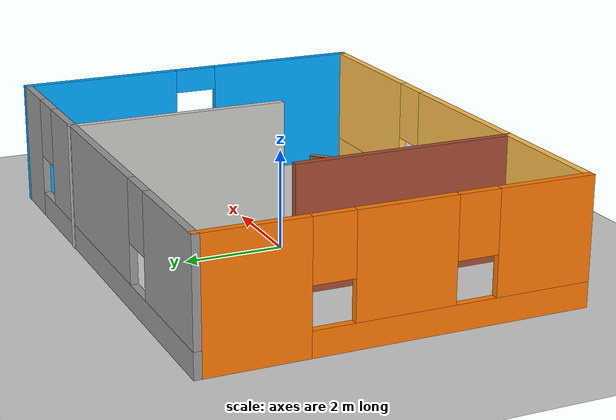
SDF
<sdf version="1.6">
 <world name="default">
  <light name="sun" type="directional">
   <pose>0 0 10 0 -0 0</pose>
   <diffuse>0.8 0.8 0.8 1</diffuse>
   <specular>0.2 0.2 0.2 1</specular>
   <attenuation>
    <range>1000</range>
    <constant>0.9</constant>
    <linear>0.01</linear>
    <quadratic>0.001</quadratic>
   </attenuation>
   <direction>-0.5 0.1 -0.9</direction>
  </light>
  <model name="ground_plane">
   <static>1</static>
   <link name="link">
    <collision name="collision">
     <geometry><plane><normal>0 0 1</normal><size>100 100</size></plane></geometry>
     <surface><friction><ode><mu>100</mu><mu2>50</mu2></ode></friction></surface>
    </collision>
    <visual name="visual">
     <cast_shadows>0</cast_shadows>
     <geometry><plane><normal>0 0 1</normal><size>100 100</size></plane></geometry>
     <material>
      <script><uri>file://media/materials/scripts/gazebo.material</uri><name>Gazebo/Grey</name></script>
     </material>
    </visual>
   </link>
  </model>
  <gravity>0 0 -9.8</gravity>
  <magnetic_field>6e-06 2.3e-05 -4.2e-05</magnetic_field>
  <atmosphere type="adiabatic"/>
  <physics name="default_physics" default="0" type="ode">
   <max_step_size>0.001</max_step_size>
   <real_time_factor>1</real_time_factor>
   <real_time_update_rate>1000</real_time_update_rate>
  </physics>
  <scene><ambient>0.4 0.4 0.4 1</ambient><background>0.7 0.7 0.7 1</background><shadows>1</shadows></scene>
  <spherical_coordinates>
   <surface_model>EARTH_WGS84</surface_model>
   <latitude_deg>0</latitude_deg>
   <longitude_deg>0</longitude_deg>
   <elevation>0</elevation>
   <heading_deg>0</heading_deg>
  </spherical_coordinates>
  <model name="building_002">
   <pose>-0.0081 -0.01454 0 0 -0 0</pose>
   <link name="Wall_10">
    <collision name="Wall_10_Collision">
     <geometry><box><size>4.5 0.15 2.5</size></box></geometry>
     <pose>0 0 1.25 0 -0 0</pose>
    </collision>
    <visual name="Wall_10_Visual">
     <pose>0 0 1.25 0 -0 0</pose>
     <geometry><box><size>4.5 0.15 2.5</size></box></geometry>
     <material>
      <script><uri>file://media/materials/scripts/gazebo.material</uri><name>Gazebo/CeilingTiled</name></script>
      <ambient>1 1 1 1</ambient>
     </material>
     <meta><layer>0</layer></meta>
    </visual>
    <pose>1.62687 1.50764 0 0 0 -1.5708</pose>
   </link>
   <link name="Wall_3">
    <pose>0 -3.68264 0 0 -0 0</pose>
    <visual name="Wall_3_Visual_0">
     <pose>-1.94691 0 1.25 0 -0 0</pose>
     <geometry><box><size>6.10619 0.15 2.5</size></box></geometry>
     <material>
      <script><uri>file://media/materials/scripts/gazebo.material</uri><name>Gazebo/Grey</name></script>
      <ambient>1 0.764706 0.305882 1</ambient>
     </material>
     <meta><layer>0</layer></meta>
    </visual>
    <collision name="Wall_3_Collision_0">
     <geometry><box><size>6.10619 0.15 2.5</size></box></geometry>
     <pose>-1.94691 0 1.25 0 -0 0</pose>
    </collision>
    <visual name="Wall_3_Visual_1">
     <pose>3.05309 0 0.25 0 -0 0</pose>
     <geometry><box><size>3.89381 0.15 0.5</size></box></geometry>
     <material>
      <script><uri>file://media/materials/scripts/gazebo.material</uri><name>Gazebo/Grey</name></script>
      <ambient>1 0.764706 0.305882 1</ambient>
     </material>
     <meta><layer>0</layer></meta>
    </visual>
    <collision name="Wall_3_Collision_1">
     <geometry><box><size>3.89381 0.15 0.5</size></box></geometry>
     <pose>3.05309 0 0.25 0 -0 0</pose>
    </collision>
    <visual name="Wall_3_Visual_2">
     <pose>3.45309 0 1.5 0 -0 0</pose>
     <geometry><box><size>3.09381 0.15 2</size></box></geometry>
     <material>
      <script><uri>file://media/materials/scripts/gazebo.material</uri><name>Gazebo/Grey</name></script>
      <ambient>1 0.764706 0.305882 1</ambient>
     </material>
     <meta><layer>0</layer></meta>
    </visual>
    <collision name="Wall_3_Collision_2">
     <geometry><box><size>3.09381 0.15 2</size></box></geometry>
     <pose>3.45309 0 1.5 0 -0 0</pose>
    </collision>
    <visual name="Wall_3_Visual_3">
     <pose>1.50619 0 1.9 0 -0 0</pose>
     <geometry><box><size>0.8 0.15 1.2</size></box></geometry>
     <material>
      <script><uri>file://media/materials/scripts/gazebo.material</uri><name>Gazebo/Grey</name></script>
      <ambient>1 0.764706 0.305882 1</ambient>
     </material>
     <meta><layer>0</layer></meta>
    </visual>
    <collision name="Wall_3_Collision_3">
     <geometry><box><size>0.8 0.15 1.2</size></box></geometry>
     <pose>1.50619 0 1.9 0 -0 0</pose>
    </collision>
   </link>
   <link name="Wall_4">
    <pose>4.925 -0.007643 0 0 -0 1.5708</pose>
    <visual name="Wall_4_Visual_0">
     <pose>-2.13548 0 1.25 0 -0 0</pose>
     <geometry><box><size>3.22905 0.15 2.5</size></box></geometry>
     <material>
      <script><uri>file://media/materials/scripts/gazebo.material</uri><name>Gazebo/Grey</name></script>
      <ambient>0 0.666667 1 1</ambient>
     </material>
     <meta><layer>0</layer></meta>
    </visual>
    <collision name="Wall_4_Collision_0">
     <geometry><box><size>3.22905 0.15 2.5</size></box></geometry>
     <pose>-2.13548 0 1.25 0 -0 0</pose>
    </collision>
    <visual name="Wall_4_Visual_1">
     <pose>2.06453 0 1.25 0 -0 0</pose>
     <geometry><box><size>3.37095 0.15 2.5</size></box></geometry>
     <material>
      <script><uri>file://media/materials/scripts/gazebo.material</uri><name>Gazebo/Grey</name></script>
      <ambient>0 0.666667 1 1</ambient>
     </material>
     <meta><layer>0</layer></meta>
    </visual>
    <collision name="Wall_4_Collision_1">
     <geometry><box><size>3.37095 0.15 2.5</size></box></geometry>
     <pose>2.06453 0 1.25 0 -0 0</pose>
    </collision>
    <visual name="Wall_4_Visual_2">
     <pose>-0.070951 0 2.25 0 -0 0</pose>
     <geometry><box><size>0.9 0.15 0.5</size></box></geometry>
     <material>
      <script><uri>file://media/materials/scripts/gazebo.material</uri><name>Gazebo/Grey</name></script>
      <ambient>0 0.666667 1 1</ambient>
     </material>
     <meta><layer>0</layer></meta>
    </visual>
    <collision name="Wall_4_Collision_2">
     <geometry><box><size>0.9 0.15 0.5</size></box></geometry>
     <pose>-0.070951 0 2.25 0 -0 0</pose>
    </collision>
   </link>
   <link name="Wall_5">
    <pose>0 3.66736 0 0 -0 3.14159</pose>
    <visual name="Wall_5_Visual_0">
     <pose>-4.36826 0 1.25 0 -0 0</pose>
     <geometry><box><size>1.26347 0.15 2.5</size></box></geometry>
     <material>
      <script><uri>file://media/materials/scripts/gazebo.material</uri><name>Gazebo/Grey</name></script>
      <ambient>1 1 1 1</ambient>
     </material>
     <meta><layer>0</layer></meta>
    </visual>
    <collision name="Wall_5_Collision_0">
     <geometry><box><size>1.26347 0.15 2.5</size></box></geometry>
     <pose>-4.36826 0 1.25 0 -0 0</pose>
    </collision>
    <visual name="Wall_5_Visual_1">
     <pose>0.631737 0 0.25 0 -0 0</pose>
     <geometry><box><size>8.73653 0.15 0.5</size></box></geometry>
     <material>
      <script><uri>file://media/materials/scripts/gazebo.material</uri><name>Gazebo/Grey</name></script>
      <ambient>1 1 1 1</ambient>
     </material>
     <meta><layer>0</layer></meta>
    </visual>
    <collision name="Wall_5_Collision_1">
     <geometry><box><size>8.73653 0.15 0.5</size></box></geometry>
     <pose>0.631737 0 0.25 0 -0 0</pose>
    </collision>
    <visual name="Wall_5_Visual_2">
     <pose>-0.530682 0 1.5 0 -0 0</pose>
     <geometry><box><size>4.81169 0.15 2</size></box></geometry>
     <material>
      <script><uri>file://media/materials/scripts/gazebo.material</uri><name>Gazebo/Grey</name></script>
      <ambient>1 1 1 1</ambient>
     </material>
     <meta><layer>0</layer></meta>
    </visual>
    <collision name="Wall_5_Collision_2">
     <geometry><box><size>4.81169 0.15 2</size></box></geometry>
     <pose>-0.530682 0 1.5 0 -0 0</pose>
    </collision>
    <visual name="Wall_5_Visual_3">
     <pose>3.83758 0 1.5 0 -0 0</pose>
     <geometry><box><size>2.32484 0.15 2</size></box></geometry>
     <material>
      <script><uri>file://media/materials/scripts/gazebo.material</uri><name>Gazebo/Grey</name></script>
      <ambient>1 1 1 1</ambient>
     </material>
     <meta><layer>0</layer></meta>
    </visual>
    <collision name="Wall_5_Collision_3">
     <geometry><box><size>2.32484 0.15 2</size></box></geometry>
     <pose>3.83758 0 1.5 0 -0 0</pose>
    </collision>
    <visual name="Wall_5_Visual_4">
     <pose>-3.33652 0 1.9 0 -0 0</pose>
     <geometry><box><size>0.8 0.15 1.2</size></box></geometry>
     <material>
      <script><uri>file://media/materials/scripts/gazebo.material</uri><name>Gazebo/Grey</name></script>
      <ambient>1 1 1 1</ambient>
     </material>
     <meta><layer>0</layer></meta>
    </visual>
    <collision name="Wall_5_Collision_4">
     <geometry><box><size>0.8 0.15 1.2</size></box></geometry>
     <pose>-3.33652 0 1.9 0 -0 0</pose>
    </collision>
    <visual name="Wall_5_Visual_5">
     <pose>2.27516 0 1.9 0 -0 0</pose>
     <geometry><box><size>0.8 0.15 1.2</size></box></geometry>
     <material>
      <script><uri>file://media/materials/scripts/gazebo.material</uri><name>Gazebo/Grey</name></script>
      <ambient>1 1 1 1</ambient>
     </material>
     <meta><layer>0</layer></meta>
    </visual>
    <collision name="Wall_5_Collision_5">
     <geometry><box><size>0.8 0.15 1.2</size></box></geometry>
     <pose>2.27516 0 1.9 0 -0 0</pose>
    </collision>
   </link>
   <link name="Wall_6">
    <pose>-4.925 -0.007643 0 0 0 -1.5708</pose>
    <visual name="Wall_6_Visual_0">
     <pose>-2.70327 0 1.25 0 -0 0</pose>
     <geometry><box><size>2.09346 0.15 2.5</size></box></geometry>
     <material>
      <script><uri>file://media/materials/scripts/gazebo.material</uri><name>Gazebo/Grey</name></script>
      <ambient>0.996078 0.47451 0.0196078 1</ambient>
     </material>
     <meta><layer>0</layer></meta>
    </visual>
    <collision name="Wall_6_Collision_0">
     <geometry><box><size>2.09346 0.15 2.5</size></box></geometry>
     <pose>-2.70327 0 1.25 0 -0 0</pose>
    </collision>
    <visual name="Wall_6_Visual_1">
     <pose>1.04673 0 0.25 0 -0 0</pose>
     <geometry><box><size>5.40655 0.15 0.5</size></box></geometry>
     <material>
      <script><uri>file://media/materials/scripts/gazebo.material</uri><name>Gazebo/Grey</name></script>
      <ambient>0.996078 0.47451 0.0196078 1</ambient>
     </material>
     <meta><layer>0</layer></meta>
    </visual>
    <collision name="Wall_6_Collision_1">
     <geometry><box><size>5.40655 0.15 0.5</size></box></geometry>
     <pose>1.04673 0 0.25 0 -0 0</pose>
    </collision>
    <visual name="Wall_6_Visual_2">
     <pose>0.101121 0 1.5 0 -0 0</pose>
     <geometry><box><size>1.91533 0.15 2</size></box></geometry>
     <material>
      <script><uri>file://media/materials/scripts/gazebo.material</uri><name>Gazebo/Grey</name></script>
      <ambient>0.996078 0.47451 0.0196078 1</ambient>
     </material>
     <meta><layer>0</layer></meta>
    </visual>
    <collision name="Wall_6_Collision_2">
     <geometry><box><size>1.91533 0.15 2</size></box></geometry>
     <pose>0.101121 0 1.5 0 -0 0</pose>
    </collision>
    <visual name="Wall_6_Visual_3">
     <pose>2.80439 0 1.5 0 -0 0</pose>
     <geometry><box><size>1.89121 0.15 2</size></box></geometry>
     <material>
      <script><uri>file://media/materials/scripts/gazebo.material</uri><name>Gazebo/Grey</name></script>
      <ambient>0.996078 0.47451 0.0196078 1</ambient>
     </material>
     <meta><layer>0</layer></meta>
    </visual>
    <collision name="Wall_6_Collision_3">
     <geometry><box><size>1.89121 0.15 2</size></box></geometry>
     <pose>2.80439 0 1.5 0 -0 0</pose>
    </collision>
    <visual name="Wall_6_Visual_4">
     <pose>-1.25655 0 1.9 0 -0 0</pose>
     <geometry><box><size>0.8 0.15 1.2</size></box></geometry>
     <material>
      <script><uri>file://media/materials/scripts/gazebo.material</uri><name>Gazebo/Grey</name></script>
      <ambient>0.996078 0.47451 0.0196078 1</ambient>
     </material>
     <meta><layer>0</layer></meta>
    </visual>
    <collision name="Wall_6_Collision_4">
     <geometry><box><size>0.8 0.15 1.2</size></box></geometry>
     <pose>-1.25655 0 1.9 0 -0 0</pose>
    </collision>
    <visual name="Wall_6_Visual_5">
     <pose>1.45879 0 1.9 0 -0 0</pose>
     <geometry><box><size>0.8 0.15 1.2</size></box></geometry>
     <material>
      <script><uri>file://media/materials/scripts/gazebo.material</uri><name>Gazebo/Grey</name></script>
      <ambient>0.996078 0.47451 0.0196078 1</ambient>
     </material>
     <meta><layer>0</layer></meta>
    </visual>
    <collision name="Wall_6_Collision_5">
     <geometry><box><size>0.8 0.15 1.2</size></box></geometry>
     <pose>1.45879 0 1.9 0 -0 0</pose>
    </collision>
   </link>
   <link name="Wall_8">
    <collision name="Wall_8_Collision">
     <geometry><box><size>4.5 0.15 2.5</size></box></geometry>
     <pose>0 0 1.25 0 -0 0</pose>
    </collision>
    <visual name="Wall_8_Visual">
     <pose>0 0 1.25 0 -0 0</pose>
     <geometry><box><size>4.5 0.15 2.5</size></box></geometry>
     <material>
      <script><uri>file://media/materials/scripts/gazebo.material</uri><name>Gazebo/Bricks</name></script>
      <ambient>1 1 1 1</ambient>
     </material>
     <meta><layer>0</layer></meta>
    </visual>
    <pose>-2.29527 -1.48381 0 0 -0 1.5708</pose>
   </link>
   <static>1</static>
  </model>
  <model name="bookshelf">
   <static>1</static>
   <link name="link">
    <inertial><mass>1</mass></inertial>
    <collision name="back">
     <pose>0 0.005 0.6 0 -0 0</pose>
     <geometry><box><size>0.9 0.01 1.2</size></box></geometry>
    </collision>
    <visual name="visual1">
     <pose>0 0.005 0.6 0 -0 0</pose>
     <geometry><box><size>0.9 0.01 1.2</size></box></geometry>
     <material>
      <script><uri>file://media/materials/scripts/gazebo.material</uri><name>Gazebo/Wood</name></script>
     </material>
    </visual>
    <collision name="left_side">
     <pose>0.45 -0.195 0.6 0 -0 0</pose>
     <geometry><box><size>0.02 0.4 1.2</size></box></geometry>
    </collision>
    <visual name="visual2">
     <pose>0.45 -0.195 0.6 0 -0 0</pose>
     <geometry><box><size>0.02 0.4 1.2</size></box></geometry>
     <material>
      <script><uri>file://media/materials/scripts/gazebo.material</uri><name>Gazebo/Wood</name></script>
     </material>
    </visual>
    <collision name="right_side">
     <pose>-0.45 -0.195 0.6 0 -0 0</pose>
     <geometry><box><size>0.02 0.4 1.2</size></box></geometry>
    </collision>
    <visual name="visual3">
     <pose>-0.45 -0.195 0.6 0 -0 0</pose>
     <geometry><box><size>0.02 0.4 1.2</size></box></geometry>
     <material>
      <script><uri>file://media/materials/scripts/gazebo.material</uri><name>Gazebo/Wood</name></script>
     </material>
    </visual>
    <collision name="bottom">
     <pose>0 -0.195 0.03 0 -0 0</pose>
     <geometry><box><size>0.88 0.4 0.06</size></box></geometry>
    </collision>
    <visual name="visual4">
     <pose>0 -0.195 0.03 0 -0 0</pose>
     <geometry><box><size>0.88 0.4 0.06</size></box></geometry>
     <material>
      <script><uri>file://media/materials/scripts/gazebo.material</uri><name>Gazebo/Wood</name></script>
     </material>
    </visual>
    <collision name="top">
     <pose>0 -0.195 1.19 0 -0 0</pose>
     <geometry><box><size>0.88 0.4 0.02</size></box></geometry>
    </collision>
    <visual name="visual5">
     <pose>0 -0.195 1.19 0 -0 0</pose>
     <geometry><box><size>0.88 0.4 0.02</size></box></geometry>
     <material>
      <script><uri>file://media/materials/scripts/gazebo.material</uri><name>Gazebo/Wood</name></script>
     </material>
    </visual>
    <collision name="low_shelf">
     <pose>0 -0.195 0.43 0 -0 0</pose>
     <geometry><box><size>0.88 0.4 0.02</size></box></geometry>
    </collision>
    <visual name="visual6">
     <pose>0 -0.195 0.43 0 -0 0</pose>
     <geometry><box><size>0.88 0.4 0.02</size></box></geometry>
     <material>
      <script><uri>file://media/materials/scripts/gazebo.material</uri><name>Gazebo/Wood</name></script>
     </material>
    </visual>
    <collision name="high_shelf">
     <pose>0 -0.195 0.8 0 -0 0</pose>
     <geometry><box><size>0.88 0.4 0.02</size></box></geometry>
    </collision>
    <visual name="visual7">
     <pose>0 -0.195 0.8 0 -0 0</pose>
     <geometry><box><size>0.88 0.4 0.02</size></box></geometry>
     <material>
      <script><uri>file://media/materials/scripts/gazebo.material</uri><name>Gazebo/Wood</name></script>
     </material>
    </visual>
   </link>
   <pose>-4.22145 3.39825 0 0 -0 0</pose>
  </model>
  <model name="cabinet">
   <static>1</static>
   <link name="cabinet_bottom_plate">
    <inertial>
     <pose>0 0 -1 0 -0 0</pose>
     <inertia><ixx>2.05</ixx><ixy>0</ixy><ixz>0</ixz><iyy>2.05</iyy><iyz>0</iyz><izz>2.05</izz></inertia>
     <mass>25</mass>
    </inertial>
    <collision name="cabinet_bottom_plate_geom">
     <pose>0 0 0.01 0 -0 0</pose>
     <geometry><box><size>0.45 0.45 0.02</size></box></geometry>
    </collision>
    <visual name="cabinet_bottom_plate_geom_visual">
     <pose>0 0 0.01 0 -0 0</pose>
     <geometry><box><size>0.45 0.45 0.02</size></box></geometry>
     <material>
      <script><uri>file://media/materials/scripts/gazebo.material</uri><name>Gazebo/Wood</name></script>
     </material>
    </visual>
    <collision name="cabinet_bottom_plate_geom_cabinet_back_plate">
     <pose>0.235 0 0.51 0 -0 0</pose>
     <geometry><box><size>0.02 0.45 1.02</size></box></geometry>
    </collision>
    <visual name="cabinet_bottom_plate_geom_cabinet_back_plate_visual">
     <pose>0.235 0 0.51 0 -0 0</pose>
     <geometry><box><size>0.02 0.45 1.02</size></box></geometry>
     <material>
      <script><uri>file://media/materials/scripts/gazebo.material</uri><name>Gazebo/Wood</name></script>
     </material>
    </visual>
    <collision name="cabinet_bottom_plate_geom_cabinet_left_plate">
     <pose>0 0.235 0.51 0 -0 0</pose>
     <geometry><box><size>0.45 0.02 1.02</size></box></geometry>
    </collision>
    <visual name="cabinet_bottom_plate_geom_cabinet_left_plate_visual">
     <pose>0 0.235 0.51 0 -0 0</pose>
     <geometry><box><size>0.45 0.02 1.02</size></box></geometry>
     <material>
      <script><uri>file://media/materials/scripts/gazebo.material</uri><name>Gazebo/Wood</name></script>
     </material>
    </visual>
    <collision name="cabinet_bottom_plate_geom_cabinet_middle_plate">
     <pose>0 0 0.51 0 -0 0</pose>
     <geometry><box><size>0.45 0.45 0.02</size></box></geometry>
    </collision>
    <visual name="cabinet_bottom_plate_geom_cabinet_middle_plate_visual">
     <pose>0 0 0.51 0 -0 0</pose>
     <geometry><box><size>0.45 0.45 0.02</size></box></geometry>
     <material>
      <script><uri>file://media/materials/scripts/gazebo.material</uri><name>Gazebo/Wood</name></script>
     </material>
    </visual>
    <collision name="cabinet_bottom_plate_geom_cabinet_right_plate">
     <pose>0 -0.235 0.51 0 -0 0</pose>
     <geometry><box><size>0.45 0.02 1.02</size></box></geometry>
    </collision>
    <visual name="cabinet_bottom_plate_geom_cabinet_right_plate_visual">
     <pose>0 -0.235 0.51 0 -0 0</pose>
     <geometry><box><size>0.45 0.02 1.02</size></box></geometry>
     <material>
      <script><uri>file://media/materials/scripts/gazebo.material</uri><name>Gazebo/Wood</name></script>
     </material>
    </visual>
    <collision name="cabinet_bottom_plate_geom_cabinet_top_plate">
     <pose>0 0 1.01 0 -0 0</pose>
     <geometry><box><size>0.45 0.45 0.02</size></box></geometry>
    </collision>
    <visual name="cabinet_bottom_plate_geom_cabinet_top_plate_visual">
     <pose>0 0 1.01 0 -0 0</pose>
     <geometry><box><size>0.45 0.45 0.02</size></box></geometry>
     <material>
      <script><uri>file://media/materials/scripts/gazebo.material</uri><name>Gazebo/Wood</name></script>
     </material>
    </visual>
   </link>
   <pose>1.14574 3.22079 0 0 -0 0</pose>
  </model>
  <model name="wooden_case">
   <link name="base">
    <pose>0 0 0.024 0 -0 0</pose>
    <inertial>
     <pose>-0.022184 0 0.171592 0 -0 0</pose>
     <mass>3.96264</mass>
     <inertia>
      <ixx>0.213536</ixx>
      <ixy>0</ixy>
      <ixz>0.000779377</ixz>
      <iyy>0.0708943</iyy>
      <iyz>0</iyz>
      <izz>0.154604</izz>
     </inertia>
    </inertial>
    <collision name="collision_back">
     <pose>-0.053975 0 0.1778 0 -0 0</pose>
     <geometry><box><size>0.01905 0.5461 0.3175</size></box></geometry>
     <surface>
      <contact>
       <poissons_ratio>0.347</poissons_ratio>
       <elastic_modulus>8.8e+09</elastic_modulus>
       <ode><kp>100000</kp><kd>100</kd><max_vel>100</max_vel><min_depth>0.001</min_depth></ode>
      </contact>
      <friction>
       <torsional>
        <coefficient>1</coefficient>
        <use_patch_radius>0</use_patch_radius>
        <surface_radius>0.01</surface_radius>
       </torsional>
      </friction>
     </surface>
    </collision>
    <visual name="visual_back">
     <pose>-0.053975 0 0.1778 0 -0 0</pose>
     <geometry><box><size>0.01905 0.5461 0.3175</size></box></geometry>
     <material>
      <script><uri>file://media/materials/scripts/gazebo.material</uri><name>Gazebo/Wood</name></script>
     </material>
    </visual>
    <collision name="collision_bottom">
     <pose>0 0 0.009525 0 -0 0</pose>
     <geometry><box><size>0.127 0.5842 0.01905</size></box></geometry>
     <surface>
      <contact>
       <poissons_ratio>0.347</poissons_ratio>
       <elastic_modulus>8.8e+09</elastic_modulus>
       <ode><kp>100000</kp><kd>100</kd><max_vel>100</max_vel><min_depth>0.001</min_depth></ode>
      </contact>
      <friction>
       <torsional>
        <coefficient>1</coefficient>
        <use_patch_radius>0</use_patch_radius>
        <surface_radius>0.01</surface_radius>
       </torsional>
      </friction>
     </surface>
    </collision>
    <visual name="visual_bottom">
     <pose>0 0 0.009525 0 -0 0</pose>
     <geometry><box><size>0.127 0.5842 0.01905</size></box></geometry>
     <material>
      <script><uri>file://media/materials/scripts/gazebo.material</uri><name>Gazebo/Wood</name></script>
     </material>
    </visual>
    <collision name="collision_top">
     <pose>0 0 0.346075 0 -0 0</pose>
     <geometry><box><size>0.127 0.5842 0.01905</size></box></geometry>
     <surface>
      <contact>
       <poissons_ratio>0.347</poissons_ratio>
       <elastic_modulus>8.8e+09</elastic_modulus>
       <ode><kp>100000</kp><kd>100</kd><max_vel>100</max_vel><min_depth>0.001</min_depth></ode>
      </contact>
      <friction>
       <torsional>
        <coefficient>1</coefficient>
        <use_patch_radius>0</use_patch_radius>
        <surface_radius>0.01</surface_radius>
       </torsional>
      </friction>
     </surface>
    </collision>
    <visual name="visual_top">
     <pose>0 0 0.346075 0 -0 0</pose>
     <geometry><box><size>0.127 0.5842 0.01905</size></box></geometry>
     <material>
      <script><uri>file://media/materials/scripts/gazebo.material</uri><name>Gazebo/Wood</name></script>
     </material>
    </visual>
    <collision name="collision_left">
     <pose>0 -0.282575 0.1778 0 -0 0</pose>
     <geometry><box><size>0.127 0.01905 0.3175</size></box></geometry>
     <surface>
      <contact>
       <poissons_ratio>0.347</poissons_ratio>
       <elastic_modulus>8.8e+09</elastic_modulus>
       <ode><kp>100000</kp><kd>100</kd><max_vel>100</max_vel><min_depth>0.001</min_depth></ode>
      </contact>
      <friction>
       <torsional>
        <coefficient>1</coefficient>
        <use_patch_radius>0</use_patch_radius>
        <surface_radius>0.01</surface_radius>
       </torsional>
      </friction>
     </surface>
    </collision>
    <visual name="visual_left">
     <pose>0 -0.282575 0.1778 0 -0 0</pose>
     <geometry><box><size>0.127 0.01905 0.3175</size></box></geometry>
     <material>
      <script><uri>file://media/materials/scripts/gazebo.material</uri><name>Gazebo/Wood</name></script>
     </material>
    </visual>
    <collision name="collision_right">
     <pose>0 0.282575 0.1778 0 -0 0</pose>
     <geometry><box><size>0.127 0.01905 0.3175</size></box></geometry>
     <surface>
      <contact>
       <poissons_ratio>0.347</poissons_ratio>
       <elastic_modulus>8.8e+09</elastic_modulus>
       <ode><kp>100000</kp><kd>100</kd><max_vel>100</max_vel><min_depth>0.001</min_depth></ode>
      </contact>
      <friction>
       <torsional>
        <coefficient>1</coefficient>
        <use_patch_radius>0</use_patch_radius>
        <surface_radius>0.01</surface_radius>
       </torsional>
      </friction>
     </surface>
    </collision>
    <visual name="visual_right">
     <pose>0 0.282575 0.1778 0 -0 0</pose>
     <geometry><box><size>0.127 0.01905 0.3175</size></box></geometry>
     <material>
      <script><uri>file://media/materials/scripts/gazebo.material</uri><name>Gazebo/Wood</name></script>
     </material>
    </visual>
    <collision name="collision_block_left">
     <pose>0.0095 -0.2151 -0.012 0 -0 0</pose>
     <geometry><box><size>0.108 0.05 0.024</size></box></geometry>
     <surface>
      <contact>
       <poissons_ratio>0.347</poissons_ratio>
       <elastic_modulus>8.8e+09</elastic_modulus>
       <ode><kp>100000</kp><kd>100</kd><max_vel>100</max_vel><min_depth>0.001</min_depth></ode>
      </contact>
      <friction>
       <torsional>
        <coefficient>1</coefficient>
        <use_patch_radius>0</use_patch_radius>
        <surface_radius>0.01</surface_radius>
       </torsional>
      </friction>
     </surface>
    </collision>
    <visual name="visual_block_left">
     <pose>0.0095 -0.2151 -0.012 0 -0 0</pose>
     <geometry><box><size>0.108 0.05 0.024</size></box></geometry>
     <material>
      <script><uri>file://media/materials/scripts/gazebo.material</uri><name>Gazebo/Wood</name></script>
     </material>
    </visual>
    <collision name="collision_block_right">
     <pose>0.0095 0.2151 -0.012 0 -0 0</pose>
     <geometry><box><size>0.108 0.05 0.024</size></box></geometry>
     <surface>
      <contact>
       <poissons_ratio>0.347</poissons_ratio>
       <elastic_modulus>8.8e+09</elastic_modulus>
       <ode><kp>100000</kp><kd>100</kd><max_vel>100</max_vel><min_depth>0.001</min_depth></ode>
      </contact>
      <friction>
       <torsional>
        <coefficient>1</coefficient>
        <use_patch_radius>0</use_patch_radius>
        <surface_radius>0.01</surface_radius>
       </torsional>
      </friction>
     </surface>
    </collision>
    <visual name="visual_block_right">
     <pose>0.0095 0.2151 -0.012 0 -0 0</pose>
     <geometry><box><size>0.108 0.05 0.024</size></box></geometry>
     <material>
      <script><uri>file://media/materials/scripts/gazebo.material</uri><name>Gazebo/Wood</name></script>
     </material>
    </visual>
   </link>
   <link name="lid">
    <pose>0.243775 0 0.009525 0 -0 0</pose>
    <inertial>
     <mass>1.97874</mass>
     <inertia>
      <ixx>0.0563367</ixx>
      <ixy>0</ixy>
      <ixz>0</ixz>
      <iyy>0.020911</iyy>
      <iyz>0</iyz>
      <izz>0.0771281</izz>
     </inertia>
    </inertial>
    <collision name="collision">
     <geometry><box><size>0.3556 0.5842 0.01905</size></box></geometry>
     <surface>
      <contact>
       <poissons_ratio>0.347</poissons_ratio>
       <elastic_modulus>8.8e+09</elastic_modulus>
       <ode><kp>100000</kp><kd>100</kd><max_vel>100</max_vel><min_depth>0.001</min_depth></ode>
      </contact>
      <friction>
       <torsional>
        <coefficient>1</coefficient>
        <use_patch_radius>0</use_patch_radius>
        <surface_radius>0.01</surface_radius>
       </torsional>
      </friction>
     </surface>
    </collision>
    <visual name="visual">
     <geometry><box><size>0.3556 0.5842 0.01905</size></box></geometry>
     <material>
      <script><uri>file://media/materials/scripts/gazebo.material</uri><name>Gazebo/Wood</name></script>
     </material>
    </visual>
    <visual name="tee_nut_1">
     <pose>0.122 -0.216 0 0 -0 0</pose>
     <geometry><cylinder><radius>0.00635</radius><length>0.0192405</length></cylinder></geometry>
     <material>
      <script><uri>file://media/materials/scripts/gazebo.material</uri><name>Gazebo/Grey</name></script>
     </material>
    </visual>
    <visual name="tee_nut_2">
     <pose>0.122 -0.088 0 0 -0 0</pose>
     <geometry><cylinder><radius>0.00635</radius><length>0.0192405</length></cylinder></geometry>
     <material>
      <script><uri>file://media/materials/scripts/gazebo.material</uri><name>Gazebo/Grey</name></script>
     </material>
    </visual>
    <visual name="tee_nut_3">
     <pose>0.122 0.088 0 0 -0 0</pose>
     <geometry><cylinder><radius>0.00635</radius><length>0.0192405</length></cylinder></geometry>
     <material>
      <script><uri>file://media/materials/scripts/gazebo.material</uri><name>Gazebo/Grey</name></script>
     </material>
    </visual>
    <visual name="tee_nut_4">
     <pose>0.122 0.216 0 0 -0 0</pose>
     <geometry><cylinder><radius>0.00635</radius><length>0.0192405</length></cylinder></geometry>
     <material>
      <script><uri>file://media/materials/scripts/gazebo.material</uri><name>Gazebo/Grey</name></script>
     </material>
    </visual>
   </link>
   <joint name="lid_hinge" type="revolute">
    <pose>-0.1778 0 0.01905 0 -0 0</pose>
    <parent>base</parent>
    <child>lid</child>
    <axis>
     <xyz>0 1 0</xyz>
     <limit><upper>0.523599</upper><lower>-1.5708</lower></limit>
     <use_parent_model_frame>0</use_parent_model_frame>
     <dynamics><spring_reference>0</spring_reference><spring_stiffness>0</spring_stiffness></dynamics>
    </axis>
   </joint>
   <pose>4.03728 -2.82684 -0.001057 -0 -0.000405 2.33292</pose>
  </model>
  <model name="unit_cylinder">
   <pose>3.08844 1.92661 0.499997 3e-06 4e-06 -0</pose>
   <link name="link">
    <inertial>
     <mass>1</mass>
     <inertia><ixx>0.145833</ixx><ixy>0</ixy><ixz>0</ixz><iyy>0.145833</iyy><iyz>0</iyz><izz>0.125</izz></inertia>
    </inertial>
    <collision name="collision">
     <geometry><cylinder><radius>0.5</radius><length>1</length></cylinder></geometry>
    </collision>
    <visual name="visual">
     <geometry><cylinder><radius>0.5</radius><length>1</length></cylinder></geometry>
     <material>
      <script><name>Gazebo/Grey</name><uri>file://media/materials/scripts/gazebo.material</uri></script>
     </material>
    </visual>
   </link>
  </model>
 </world>
</sdf>
